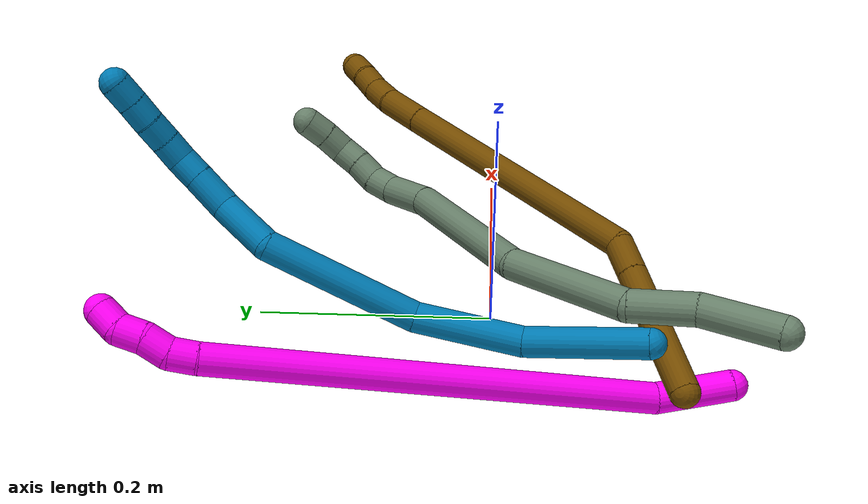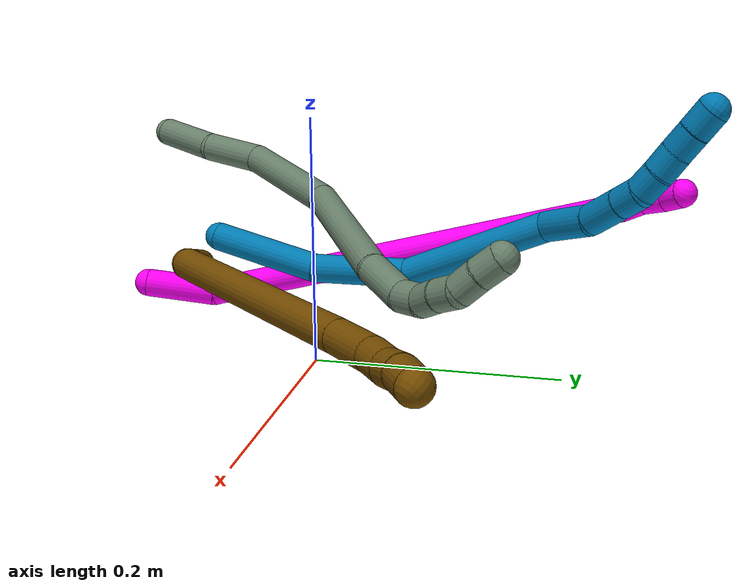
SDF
<sdf version="1.7">
 <world name="default">
  <model name="9">
   <static>0</static>
   <link name="9">
    <collision name="collision-cylinder-e_1_1_4">
     <pose>0.005019 0.023225 0.043692 -0.48857 0.101093 -0.025219</pose>
     <geometry><cylinder><radius>0.0125</radius><length>0.09947</length></cylinder></geometry>
     <surface>
      <friction><ode><mu>1.16</mu><mu2>1.16</mu2><slip1>0</slip1><slip2>0</slip2></ode></friction>
      <contact><ode><kp>1e+06</kp><kd>1</kd><max_vel>0</max_vel><min_depth>0.001</min_depth></ode></contact>
     </surface>
    </collision>
    <visual name="visual-cylinder-e_1_1_4">
     <pose>0.005019 0.023225 0.043692 -0.48857 0.101093 -0.025219</pose>
     <geometry><cylinder><radius>0.0125</radius><length>0.09947</length></cylinder></geometry>
     <material><ambient>0 0.490196 0.709804 1</ambient></material>
    </visual>
    <collision name="collision-cylinder-e_2_4_5">
     <pose>0.019857 0.075127 0.119858 -0.723403 0.222853 -0.084616</pose>
     <geometry><cylinder><radius>0.0125</radius><length>0.088845</length></cylinder></geometry>
     <surface>
      <friction><ode><mu>1.16</mu><mu2>1.16</mu2><slip1>0</slip1><slip2>0</slip2></ode></friction>
      <contact><ode><kp>1e+06</kp><kd>1</kd><max_vel>0</max_vel><min_depth>0.001</min_depth></ode></contact>
     </surface>
    </collision>
    <visual name="visual-cylinder-e_2_4_5">
     <pose>0.019857 0.075127 0.119858 -0.723403 0.222853 -0.084616</pose>
     <geometry><cylinder><radius>0.0125</radius><length>0.088845</length></cylinder></geometry>
     <material><ambient>0 0.490196 0.709804 1</ambient></material>
    </visual>
    <collision name="collision-cylinder-e_3_5_6">
     <pose>0.055946 0.154835 0.183388 -1.02409 0.414329 -0.235173</pose>
     <geometry><cylinder><radius>0.0125</radius><length>0.13052</length></cylinder></geometry>
     <surface>
      <friction><ode><mu>1.16</mu><mu2>1.16</mu2><slip1>0</slip1><slip2>0</slip2></ode></friction>
      <contact><ode><kp>1e+06</kp><kd>1</kd><max_vel>0</max_vel><min_depth>0.001</min_depth></ode></contact>
     </surface>
    </collision>
    <visual name="visual-cylinder-e_3_5_6">
     <pose>0.055946 0.154835 0.183388 -1.02409 0.414329 -0.235173</pose>
     <geometry><cylinder><radius>0.0125</radius><length>0.13052</length></cylinder></geometry>
     <material><ambient>0 0.490196 0.709804 1</ambient></material>
    </visual>
    <collision name="collision-cylinder-e_4_6_7">
     <pose>0.080499 0.228278 0.224061 -1.16543 -0.070399 0.046408</pose>
     <geometry><cylinder><radius>0.0125</radius><length>0.048898</length></cylinder></geometry>
     <surface>
      <friction><ode><mu>1.16</mu><mu2>1.16</mu2><slip1>0</slip1><slip2>0</slip2></ode></friction>
      <contact><ode><kp>1e+06</kp><kd>1</kd><max_vel>0</max_vel><min_depth>0.001</min_depth></ode></contact>
     </surface>
    </collision>
    <visual name="visual-cylinder-e_4_6_7">
     <pose>0.080499 0.228278 0.224061 -1.16543 -0.070399 0.046408</pose>
     <geometry><cylinder><radius>0.0125</radius><length>0.048898</length></cylinder></geometry>
     <material><ambient>0 0.490196 0.709804 1</ambient></material>
    </visual>
    <collision name="collision-cylinder-e_5_7_8">
     <pose>0.081609 0.266055 0.237216 -1.34452 0.1776 -0.141495</pose>
     <geometry><cylinder><radius>0.0125</radius><length>0.032038</length></cylinder></geometry>
     <surface>
      <friction><ode><mu>1.16</mu><mu2>1.16</mu2><slip1>0</slip1><slip2>0</slip2></ode></friction>
      <contact><ode><kp>1e+06</kp><kd>1</kd><max_vel>0</max_vel><min_depth>0.001</min_depth></ode></contact>
     </surface>
    </collision>
    <visual name="visual-cylinder-e_5_7_8">
     <pose>0.081609 0.266055 0.237216 -1.34452 0.1776 -0.141495</pose>
     <geometry><cylinder><radius>0.0125</radius><length>0.032038</length></cylinder></geometry>
     <material><ambient>0 0.490196 0.709804 1</ambient></material>
    </visual>
    <collision name="collision-cylinder-e_6_8_9">
     <pose>0.086489 0.291052 0.243045 -1.3372 0.204141 -0.161478</pose>
     <geometry><cylinder><radius>0.0125</radius><length>0.020223</length></cylinder></geometry>
     <surface>
      <friction><ode><mu>1.16</mu><mu2>1.16</mu2><slip1>0</slip1><slip2>0</slip2></ode></friction>
      <contact><ode><kp>1e+06</kp><kd>1</kd><max_vel>0</max_vel><min_depth>0.001</min_depth></ode></contact>
     </surface>
    </collision>
    <visual name="visual-cylinder-e_6_8_9">
     <pose>0.086489 0.291052 0.243045 -1.3372 0.204141 -0.161478</pose>
     <geometry><cylinder><radius>0.0125</radius><length>0.020223</length></cylinder></geometry>
     <material><ambient>0 0.490196 0.709804 1</ambient></material>
    </visual>
    <collision name="collision-cylinder-e_7_9_10">
     <pose>0.093178 0.309546 0.245481 -1.55457 0.482251 -0.474781</pose>
     <geometry><cylinder><radius>0.0125</radius><length>0.020006</length></cylinder></geometry>
     <surface>
      <friction><ode><mu>1.16</mu><mu2>1.16</mu2><slip1>0</slip1><slip2>0</slip2></ode></friction>
      <contact><ode><kp>1e+06</kp><kd>1</kd><max_vel>0</max_vel><min_depth>0.001</min_depth></ode></contact>
     </surface>
    </collision>
    <visual name="visual-cylinder-e_7_9_10">
     <pose>0.093178 0.309546 0.245481 -1.55457 0.482251 -0.474781</pose>
     <geometry><cylinder><radius>0.0125</radius><length>0.020006</length></cylinder></geometry>
     <material><ambient>0 0.490196 0.709804 1</ambient></material>
    </visual>
    <collision name="collision-cylinder-e_8_10_11">
     <pose>0.103451 0.326665 0.24535 -1.60413 0.59842 -0.617459</pose>
     <geometry><cylinder><radius>0.0125</radius><length>0.02</length></cylinder></geometry>
     <surface>
      <friction><ode><mu>1.16</mu><mu2>1.16</mu2><slip1>0</slip1><slip2>0</slip2></ode></friction>
      <contact><ode><kp>1e+06</kp><kd>1</kd><max_vel>0</max_vel><min_depth>0.001</min_depth></ode></contact>
     </surface>
    </collision>
    <visual name="visual-cylinder-e_8_10_11">
     <pose>0.103451 0.326665 0.24535 -1.60413 0.59842 -0.617459</pose>
     <geometry><cylinder><radius>0.0125</radius><length>0.02</length></cylinder></geometry>
     <material><ambient>0 0.490196 0.709804 1</ambient></material>
    </visual>
    <collision name="collision-cylinder-e_9_11_12">
     <pose>0.114019 0.343618 0.244887 -1.59234 0.516107 -0.526842</pose>
     <geometry><cylinder><radius>0.0125</radius><length>0.020001</length></cylinder></geometry>
     <surface>
      <friction><ode><mu>1.16</mu><mu2>1.16</mu2><slip1>0</slip1><slip2>0</slip2></ode></friction>
      <contact><ode><kp>1e+06</kp><kd>1</kd><max_vel>0</max_vel><min_depth>0.001</min_depth></ode></contact>
     </surface>
    </collision>
    <visual name="visual-cylinder-e_9_11_12">
     <pose>0.114019 0.343618 0.244887 -1.59234 0.516107 -0.526842</pose>
     <geometry><cylinder><radius>0.0125</radius><length>0.020001</length></cylinder></geometry>
     <material><ambient>0 0.490196 0.709804 1</ambient></material>
    </visual>
    <collision name="collision-cylinder-e_10_12_2">
     <pose>0.124311 0.360757 0.244537 -1.59003 0.565246 -0.575634</pose>
     <geometry><cylinder><radius>0.0125</radius><length>0.02</length></cylinder></geometry>
     <surface>
      <friction><ode><mu>1.16</mu><mu2>1.16</mu2><slip1>0</slip1><slip2>0</slip2></ode></friction>
      <contact><ode><kp>1e+06</kp><kd>1</kd><max_vel>0</max_vel><min_depth>0.001</min_depth></ode></contact>
     </surface>
    </collision>
    <visual name="visual-cylinder-e_10_12_2">
     <pose>0.124311 0.360757 0.244537 -1.59003 0.565246 -0.575634</pose>
     <geometry><cylinder><radius>0.0125</radius><length>0.02</length></cylinder></geometry>
     <material><ambient>0 0.490196 0.709804 1</ambient></material>
    </visual>
    <collision name="collision-sphere-2">
     <pose>0.129667 0.3692 0.244375 0 -0 0</pose>
     <geometry><sphere><radius>0.0125</radius></sphere></geometry>
     <surface>
      <friction><ode><mu>1.16</mu><mu2>1.16</mu2><slip1>0</slip1><slip2>0</slip2></ode></friction>
      <contact><ode><kp>1e+06</kp><kd>1</kd><max_vel>0</max_vel><min_depth>0.001</min_depth></ode></contact>
     </surface>
    </collision>
    <visual name="visual-sphere-2">
     <pose>0.129667 0.3692 0.244375 0 -0 0</pose>
     <geometry><sphere><radius>0.0125</radius></sphere></geometry>
     <material><ambient>0 0.490196 0.709804 1</ambient></material>
    </visual>
    <collision name="collision-sphere-12">
     <pose>0.118954 0.352314 0.2447 0 -0 0</pose>
     <geometry><sphere><radius>0.0125</radius></sphere></geometry>
     <surface>
      <friction><ode><mu>1.16</mu><mu2>1.16</mu2><slip1>0</slip1><slip2>0</slip2></ode></friction>
      <contact><ode><kp>1e+06</kp><kd>1</kd><max_vel>0</max_vel><min_depth>0.001</min_depth></ode></contact>
     </surface>
    </collision>
    <visual name="visual-sphere-12">
     <pose>0.118954 0.352314 0.2447 0 -0 0</pose>
     <geometry><sphere><radius>0.0125</radius></sphere></geometry>
     <material><ambient>0 0.490196 0.709804 1</ambient></material>
    </visual>
    <collision name="collision-sphere-11">
     <pose>0.109084 0.334923 0.245074 0 -0 0</pose>
     <geometry><sphere><radius>0.0125</radius></sphere></geometry>
     <surface>
      <friction><ode><mu>1.16</mu><mu2>1.16</mu2><slip1>0</slip1><slip2>0</slip2></ode></friction>
      <contact><ode><kp>1e+06</kp><kd>1</kd><max_vel>0</max_vel><min_depth>0.001</min_depth></ode></contact>
     </surface>
    </collision>
    <visual name="visual-sphere-11">
     <pose>0.109084 0.334923 0.245074 0 -0 0</pose>
     <geometry><sphere><radius>0.0125</radius></sphere></geometry>
     <material><ambient>0 0.490196 0.709804 1</ambient></material>
    </visual>
    <collision name="collision-sphere-10">
     <pose>0.097817 0.318407 0.245625 0 -0 0</pose>
     <geometry><sphere><radius>0.0125</radius></sphere></geometry>
     <surface>
      <friction><ode><mu>1.16</mu><mu2>1.16</mu2><slip1>0</slip1><slip2>0</slip2></ode></friction>
      <contact><ode><kp>1e+06</kp><kd>1</kd><max_vel>0</max_vel><min_depth>0.001</min_depth></ode></contact>
     </surface>
    </collision>
    <visual name="visual-sphere-10">
     <pose>0.097817 0.318407 0.245625 0 -0 0</pose>
     <geometry><sphere><radius>0.0125</radius></sphere></geometry>
     <material><ambient>0 0.490196 0.709804 1</ambient></material>
    </visual>
    <collision name="collision-sphere-9">
     <pose>0.088539 0.300685 0.245337 0 -0 0</pose>
     <geometry><sphere><radius>0.0125</radius></sphere></geometry>
     <surface>
      <friction><ode><mu>1.16</mu><mu2>1.16</mu2><slip1>0</slip1><slip2>0</slip2></ode></friction>
      <contact><ode><kp>1e+06</kp><kd>1</kd><max_vel>0</max_vel><min_depth>0.001</min_depth></ode></contact>
     </surface>
    </collision>
    <visual name="visual-sphere-9">
     <pose>0.088539 0.300685 0.245337 0 -0 0</pose>
     <geometry><sphere><radius>0.0125</radius></sphere></geometry>
     <material><ambient>0 0.490196 0.709804 1</ambient></material>
    </visual>
    <collision name="collision-sphere-4">
     <pose>0.010039 0.046449 0.087384 0 -0 0</pose>
     <geometry><sphere><radius>0.0125</radius></sphere></geometry>
     <surface>
      <friction><ode><mu>1.16</mu><mu2>1.16</mu2><slip1>0</slip1><slip2>0</slip2></ode></friction>
      <contact><ode><kp>1e+06</kp><kd>1</kd><max_vel>0</max_vel><min_depth>0.001</min_depth></ode></contact>
     </surface>
    </collision>
    <visual name="visual-sphere-4">
     <pose>0.010039 0.046449 0.087384 0 -0 0</pose>
     <geometry><sphere><radius>0.0125</radius></sphere></geometry>
     <material><ambient>0 0.490196 0.709804 1</ambient></material>
    </visual>
    <collision name="collision-sphere-1">
     <geometry><sphere><radius>0.0125</radius></sphere></geometry>
     <surface>
      <friction><ode><mu>1.16</mu><mu2>1.16</mu2><slip1>0</slip1><slip2>0</slip2></ode></friction>
      <contact><ode><kp>1e+06</kp><kd>1</kd><max_vel>0</max_vel><min_depth>0.001</min_depth></ode></contact>
     </surface>
    </collision>
    <visual name="visual-sphere-1">
     <geometry><sphere><radius>0.0125</radius></sphere></geometry>
     <material><ambient>0 0.490196 0.709804 1</ambient></material>
    </visual>
    <collision name="collision-sphere-8">
     <pose>0.084439 0.28142 0.240754 0 -0 0</pose>
     <geometry><sphere><radius>0.0125</radius></sphere></geometry>
     <surface>
      <friction><ode><mu>1.16</mu><mu2>1.16</mu2><slip1>0</slip1><slip2>0</slip2></ode></friction>
      <contact><ode><kp>1e+06</kp><kd>1</kd><max_vel>0</max_vel><min_depth>0.001</min_depth></ode></contact>
     </surface>
    </collision>
    <visual name="visual-sphere-8">
     <pose>0.084439 0.28142 0.240754 0 -0 0</pose>
     <geometry><sphere><radius>0.0125</radius></sphere></geometry>
     <material><ambient>0 0.490196 0.709804 1</ambient></material>
    </visual>
    <collision name="collision-sphere-5">
     <pose>0.029674 0.103805 0.152331 0 -0 0</pose>
     <geometry><sphere><radius>0.0125</radius></sphere></geometry>
     <surface>
      <friction><ode><mu>1.16</mu><mu2>1.16</mu2><slip1>0</slip1><slip2>0</slip2></ode></friction>
      <contact><ode><kp>1e+06</kp><kd>1</kd><max_vel>0</max_vel><min_depth>0.001</min_depth></ode></contact>
     </surface>
    </collision>
    <visual name="visual-sphere-5">
     <pose>0.029674 0.103805 0.152331 0 -0 0</pose>
     <geometry><sphere><radius>0.0125</radius></sphere></geometry>
     <material><ambient>0 0.490196 0.709804 1</ambient></material>
    </visual>
    <collision name="collision-sphere-6">
     <pose>0.082219 0.205866 0.214444 0 -0 0</pose>
     <geometry><sphere><radius>0.0125</radius></sphere></geometry>
     <surface>
      <friction><ode><mu>1.16</mu><mu2>1.16</mu2><slip1>0</slip1><slip2>0</slip2></ode></friction>
      <contact><ode><kp>1e+06</kp><kd>1</kd><max_vel>0</max_vel><min_depth>0.001</min_depth></ode></contact>
     </surface>
    </collision>
    <visual name="visual-sphere-6">
     <pose>0.082219 0.205866 0.214444 0 -0 0</pose>
     <geometry><sphere><radius>0.0125</radius></sphere></geometry>
     <material><ambient>0 0.490196 0.709804 1</ambient></material>
    </visual>
    <collision name="collision-sphere-7">
     <pose>0.078779 0.25069 0.233679 0 -0 0</pose>
     <geometry><sphere><radius>0.0125</radius></sphere></geometry>
     <surface>
      <friction><ode><mu>1.16</mu><mu2>1.16</mu2><slip1>0</slip1><slip2>0</slip2></ode></friction>
      <contact><ode><kp>1e+06</kp><kd>1</kd><max_vel>0</max_vel><min_depth>0.001</min_depth></ode></contact>
     </surface>
    </collision>
    <visual name="visual-sphere-7">
     <pose>0.078779 0.25069 0.233679 0 -0 0</pose>
     <geometry><sphere><radius>0.0125</radius></sphere></geometry>
     <material><ambient>0 0.490196 0.709804 1</ambient></material>
    </visual>
    <inertial>
     <pose>0.053131 0.16316 0.164017 0 -0 0</pose>
     <mass>0.5</mass>
     <inertia>
      <ixx>0.000296</ixx>
      <ixy>0</ixy>
      <ixz>0</ixz>
      <iyy>0.00022</iyy>
      <iyz>0</iyz>
      <izz>-0.000333</izz>
     </inertia>
    </inertial>
   </link>
   <pose>-0.104789 -0.120843 0.069371 2.33408 -0.521595 2.72206</pose>
  </model>
  <model name="10">
   <static>0</static>
   <link name="10">
    <collision name="collision-cylinder-e_1_1_4">
     <pose>0.001172 0.030182 0.005831 -1.37995 0.03811 -0.031453</pose>
     <geometry><cylinder><radius>0.0125</radius><length>0.061524</length></cylinder></geometry>
     <surface>
      <friction><ode><mu>1.16</mu><mu2>1.16</mu2><slip1>0</slip1><slip2>0</slip2></ode></friction>
      <contact><ode><kp>1e+06</kp><kd>1</kd><max_vel>0</max_vel><min_depth>0.001</min_depth></ode></contact>
     </surface>
    </collision>
    <visual name="visual-cylinder-e_1_1_4">
     <pose>0.001172 0.030182 0.005831 -1.37995 0.03811 -0.031453</pose>
     <geometry><cylinder><radius>0.0125</radius><length>0.061524</length></cylinder></geometry>
     <material><ambient>1 0 0.964706 1</ambient></material>
    </visual>
    <collision name="collision-cylinder-e_2_4_5">
     <pose>-0.020863 0.215945 0.095934 -1.07438 -0.130412 0.077747</pose>
     <geometry><cylinder><radius>0.0125</radius><length>0.356908</length></cylinder></geometry>
     <surface>
      <friction><ode><mu>1.16</mu><mu2>1.16</mu2><slip1>0</slip1><slip2>0</slip2></ode></friction>
      <contact><ode><kp>1e+06</kp><kd>1</kd><max_vel>0</max_vel><min_depth>0.001</min_depth></ode></contact>
     </surface>
    </collision>
    <visual name="visual-cylinder-e_2_4_5">
     <pose>-0.020863 0.215945 0.095934 -1.07438 -0.130412 0.077747</pose>
     <geometry><cylinder><radius>0.0125</radius><length>0.356908</length></cylinder></geometry>
     <material><ambient>1 0 0.964706 1</ambient></material>
    </visual>
    <collision name="collision-cylinder-e_3_5_6">
     <pose>-0.044157 0.380299 0.185682 -1.01279 -0.008517 0.004724</pose>
     <geometry><cylinder><radius>0.0125</radius><length>0.020685</length></cylinder></geometry>
     <surface>
      <friction><ode><mu>1.16</mu><mu2>1.16</mu2><slip1>0</slip1><slip2>0</slip2></ode></friction>
      <contact><ode><kp>1e+06</kp><kd>1</kd><max_vel>0</max_vel><min_depth>0.001</min_depth></ode></contact>
     </surface>
    </collision>
    <visual name="visual-cylinder-e_3_5_6">
     <pose>-0.044157 0.380299 0.185682 -1.01279 -0.008517 0.004724</pose>
     <geometry><cylinder><radius>0.0125</radius><length>0.020685</length></cylinder></geometry>
     <material><ambient>1 0 0.964706 1</ambient></material>
    </visual>
    <collision name="collision-cylinder-e_4_6_7">
     <pose>-0.042984 0.39526 0.199286 -0.650668 0.122876 -0.041495</pose>
     <geometry><cylinder><radius>0.0125</radius><length>0.020585</length></cylinder></geometry>
     <surface>
      <friction><ode><mu>1.16</mu><mu2>1.16</mu2><slip1>0</slip1><slip2>0</slip2></ode></friction>
      <contact><ode><kp>1e+06</kp><kd>1</kd><max_vel>0</max_vel><min_depth>0.001</min_depth></ode></contact>
     </surface>
    </collision>
    <visual name="visual-cylinder-e_4_6_7">
     <pose>-0.042984 0.39526 0.199286 -0.650668 0.122876 -0.041495</pose>
     <geometry><cylinder><radius>0.0125</radius><length>0.020585</length></cylinder></geometry>
     <material><ambient>1 0 0.964706 1</ambient></material>
    </visual>
    <collision name="collision-cylinder-e_5_7_8">
     <pose>-0.03994 0.409265 0.21359 -0.902123 0.176991 -0.0859</pose>
     <geometry><cylinder><radius>0.0125</radius><length>0.020242</length></cylinder></geometry>
     <surface>
      <friction><ode><mu>1.16</mu><mu2>1.16</mu2><slip1>0</slip1><slip2>0</slip2></ode></friction>
      <contact><ode><kp>1e+06</kp><kd>1</kd><max_vel>0</max_vel><min_depth>0.001</min_depth></ode></contact>
     </surface>
    </collision>
    <visual name="visual-cylinder-e_5_7_8">
     <pose>-0.03994 0.409265 0.21359 -0.902123 0.176991 -0.0859</pose>
     <geometry><cylinder><radius>0.0125</radius><length>0.020242</length></cylinder></geometry>
     <material><ambient>1 0 0.964706 1</ambient></material>
    </visual>
    <collision name="collision-cylinder-e_6_8_2">
     <pose>-0.033714 0.421336 0.227685 -0.492921 0.459191 -0.11746</pose>
     <geometry><cylinder><radius>0.0125</radius><length>0.020056</length></cylinder></geometry>
     <surface>
      <friction><ode><mu>1.16</mu><mu2>1.16</mu2><slip1>0</slip1><slip2>0</slip2></ode></friction>
      <contact><ode><kp>1e+06</kp><kd>1</kd><max_vel>0</max_vel><min_depth>0.001</min_depth></ode></contact>
     </surface>
    </collision>
    <visual name="visual-cylinder-e_6_8_2">
     <pose>-0.033714 0.421336 0.227685 -0.492921 0.459191 -0.11746</pose>
     <geometry><cylinder><radius>0.0125</radius><length>0.020056</length></cylinder></geometry>
     <material><ambient>1 0 0.964706 1</ambient></material>
    </visual>
    <collision name="collision-sphere-2">
     <pose>-0.029269 0.425589 0.235604 0 -0 0</pose>
     <geometry><sphere><radius>0.0125</radius></sphere></geometry>
     <surface>
      <friction><ode><mu>1.16</mu><mu2>1.16</mu2><slip1>0</slip1><slip2>0</slip2></ode></friction>
      <contact><ode><kp>1e+06</kp><kd>1</kd><max_vel>0</max_vel><min_depth>0.001</min_depth></ode></contact>
     </surface>
    </collision>
    <visual name="visual-sphere-2">
     <pose>-0.029269 0.425589 0.235604 0 -0 0</pose>
     <geometry><sphere><radius>0.0125</radius></sphere></geometry>
     <material><ambient>1 0 0.964706 1</ambient></material>
    </visual>
    <collision name="collision-sphere-4">
     <pose>0.002344 0.060363 0.011662 0 -0 0</pose>
     <geometry><sphere><radius>0.0125</radius></sphere></geometry>
     <surface>
      <friction><ode><mu>1.16</mu><mu2>1.16</mu2><slip1>0</slip1><slip2>0</slip2></ode></friction>
      <contact><ode><kp>1e+06</kp><kd>1</kd><max_vel>0</max_vel><min_depth>0.001</min_depth></ode></contact>
     </surface>
    </collision>
    <visual name="visual-sphere-4">
     <pose>0.002344 0.060363 0.011662 0 -0 0</pose>
     <geometry><sphere><radius>0.0125</radius></sphere></geometry>
     <material><ambient>1 0 0.964706 1</ambient></material>
    </visual>
    <collision name="collision-sphere-1">
     <geometry><sphere><radius>0.0125</radius></sphere></geometry>
     <surface>
      <friction><ode><mu>1.16</mu><mu2>1.16</mu2><slip1>0</slip1><slip2>0</slip2></ode></friction>
      <contact><ode><kp>1e+06</kp><kd>1</kd><max_vel>0</max_vel><min_depth>0.001</min_depth></ode></contact>
     </surface>
    </collision>
    <visual name="visual-sphere-1">
     <geometry><sphere><radius>0.0125</radius></sphere></geometry>
     <material><ambient>1 0 0.964706 1</ambient></material>
    </visual>
    <collision name="collision-sphere-8">
     <pose>-0.038158 0.417082 0.219767 0 -0 0</pose>
     <geometry><sphere><radius>0.0125</radius></sphere></geometry>
     <surface>
      <friction><ode><mu>1.16</mu><mu2>1.16</mu2><slip1>0</slip1><slip2>0</slip2></ode></friction>
      <contact><ode><kp>1e+06</kp><kd>1</kd><max_vel>0</max_vel><min_depth>0.001</min_depth></ode></contact>
     </surface>
    </collision>
    <visual name="visual-sphere-8">
     <pose>-0.038158 0.417082 0.219767 0 -0 0</pose>
     <geometry><sphere><radius>0.0125</radius></sphere></geometry>
     <material><ambient>1 0 0.964706 1</ambient></material>
    </visual>
    <collision name="collision-sphere-5">
     <pose>-0.044069 0.371526 0.180206 0 -0 0</pose>
     <geometry><sphere><radius>0.0125</radius></sphere></geometry>
     <surface>
      <friction><ode><mu>1.16</mu><mu2>1.16</mu2><slip1>0</slip1><slip2>0</slip2></ode></friction>
      <contact><ode><kp>1e+06</kp><kd>1</kd><max_vel>0</max_vel><min_depth>0.001</min_depth></ode></contact>
     </surface>
    </collision>
    <visual name="visual-sphere-5">
     <pose>-0.044069 0.371526 0.180206 0 -0 0</pose>
     <geometry><sphere><radius>0.0125</radius></sphere></geometry>
     <material><ambient>1 0 0.964706 1</ambient></material>
    </visual>
    <collision name="collision-sphere-6">
     <pose>-0.044245 0.389073 0.191158 0 -0 0</pose>
     <geometry><sphere><radius>0.0125</radius></sphere></geometry>
     <surface>
      <friction><ode><mu>1.16</mu><mu2>1.16</mu2><slip1>0</slip1><slip2>0</slip2></ode></friction>
      <contact><ode><kp>1e+06</kp><kd>1</kd><max_vel>0</max_vel><min_depth>0.001</min_depth></ode></contact>
     </surface>
    </collision>
    <visual name="visual-sphere-6">
     <pose>-0.044245 0.389073 0.191158 0 -0 0</pose>
     <geometry><sphere><radius>0.0125</radius></sphere></geometry>
     <material><ambient>1 0 0.964706 1</ambient></material>
    </visual>
    <collision name="collision-sphere-7">
     <pose>-0.041722 0.401448 0.207414 0 -0 0</pose>
     <geometry><sphere><radius>0.0125</radius></sphere></geometry>
     <surface>
      <friction><ode><mu>1.16</mu><mu2>1.16</mu2><slip1>0</slip1><slip2>0</slip2></ode></friction>
      <contact><ode><kp>1e+06</kp><kd>1</kd><max_vel>0</max_vel><min_depth>0.001</min_depth></ode></contact>
     </surface>
    </collision>
    <visual name="visual-sphere-7">
     <pose>-0.041722 0.401448 0.207414 0 -0 0</pose>
     <geometry><sphere><radius>0.0125</radius></sphere></geometry>
     <material><ambient>1 0 0.964706 1</ambient></material>
    </visual>
    <inertial>
     <pose>-0.021314 0.223333 0.102863 0 -0 0</pose>
     <mass>0.5</mass>
     <inertia>
      <ixx>0.004076</ixx>
      <ixy>0</ixy>
      <ixz>0</ixz>
      <iyy>0.002173</iyy>
      <iyz>0</iyz>
      <izz>-0.00283</izz>
     </inertia>
    </inertial>
   </link>
   <pose>-0.098286 -0.189608 0.022861 -0.308892 0.474707 0.134834</pose>
  </model>
  <model name="12">
   <static>0</static>
   <link name="12">
    <collision name="collision-cylinder-e_1_1_4">
     <pose>0.045022 0.029907 -0.018444 -2.12341 0.908093 -1.43697</pose>
     <geometry><cylinder><radius>0.0125</radius><length>0.114222</length></cylinder></geometry>
     <surface>
      <friction><ode><mu>1.16</mu><mu2>1.16</mu2><slip1>0</slip1><slip2>0</slip2></ode></friction>
      <contact><ode><kp>1e+06</kp><kd>1</kd><max_vel>0</max_vel><min_depth>0.001</min_depth></ode></contact>
     </surface>
    </collision>
    <visual name="visual-cylinder-e_1_1_4">
     <pose>0.045022 0.029907 -0.018444 -2.12341 0.908093 -1.43697</pose>
     <geometry><cylinder><radius>0.0125</radius><length>0.114222</length></cylinder></geometry>
     <material><ambient>0.466667 0.301961 0 1</ambient></material>
    </visual>
    <collision name="collision-cylinder-e_2_4_5">
     <pose>0.102524 0.068256 -0.041838 -2.10112 0.905824 -1.4084</pose>
     <geometry><cylinder><radius>0.0125</radius><length>0.031717</length></cylinder></geometry>
     <surface>
      <friction><ode><mu>1.16</mu><mu2>1.16</mu2><slip1>0</slip1><slip2>0</slip2></ode></friction>
      <contact><ode><kp>1e+06</kp><kd>1</kd><max_vel>0</max_vel><min_depth>0.001</min_depth></ode></contact>
     </surface>
    </collision>
    <visual name="visual-cylinder-e_2_4_5">
     <pose>0.102524 0.068256 -0.041838 -2.10112 0.905824 -1.4084</pose>
     <geometry><cylinder><radius>0.0125</radius><length>0.031717</length></cylinder></geometry>
     <material><ambient>0.466667 0.301961 0 1</ambient></material>
    </visual>
    <collision name="collision-cylinder-e_3_5_6">
     <pose>0.170924 0.183332 -0.060672 -1.70027 0.479531 -0.542979</pose>
     <geometry><cylinder><radius>0.0125</radius><length>0.242411</length></cylinder></geometry>
     <surface>
      <friction><ode><mu>1.16</mu><mu2>1.16</mu2><slip1>0</slip1><slip2>0</slip2></ode></friction>
      <contact><ode><kp>1e+06</kp><kd>1</kd><max_vel>0</max_vel><min_depth>0.001</min_depth></ode></contact>
     </surface>
    </collision>
    <visual name="visual-cylinder-e_3_5_6">
     <pose>0.170924 0.183332 -0.060672 -1.70027 0.479531 -0.542979</pose>
     <geometry><cylinder><radius>0.0125</radius><length>0.242411</length></cylinder></geometry>
     <material><ambient>0.466667 0.301961 0 1</ambient></material>
    </visual>
    <collision name="collision-cylinder-e_4_6_7">
     <pose>0.236665 0.308493 -0.077556 -1.73133 0.482154 -0.56243</pose>
     <geometry><cylinder><radius>0.0125</radius><length>0.042363</length></cylinder></geometry>
     <surface>
      <friction><ode><mu>1.16</mu><mu2>1.16</mu2><slip1>0</slip1><slip2>0</slip2></ode></friction>
      <contact><ode><kp>1e+06</kp><kd>1</kd><max_vel>0</max_vel><min_depth>0.001</min_depth></ode></contact>
     </surface>
    </collision>
    <visual name="visual-cylinder-e_4_6_7">
     <pose>0.236665 0.308493 -0.077556 -1.73133 0.482154 -0.56243</pose>
     <geometry><cylinder><radius>0.0125</radius><length>0.042363</length></cylinder></geometry>
     <material><ambient>0.466667 0.301961 0 1</ambient></material>
    </visual>
    <collision name="collision-cylinder-e_5_7_8">
     <pose>0.253087 0.337264 -0.083775 -1.87525 0.551062 -0.735347</pose>
     <geometry><cylinder><radius>0.0125</radius><length>0.025211</length></cylinder></geometry>
     <surface>
      <friction><ode><mu>1.16</mu><mu2>1.16</mu2><slip1>0</slip1><slip2>0</slip2></ode></friction>
      <contact><ode><kp>1e+06</kp><kd>1</kd><max_vel>0</max_vel><min_depth>0.001</min_depth></ode></contact>
     </surface>
    </collision>
    <visual name="visual-cylinder-e_5_7_8">
     <pose>0.253087 0.337264 -0.083775 -1.87525 0.551062 -0.735347</pose>
     <geometry><cylinder><radius>0.0125</radius><length>0.025211</length></cylinder></geometry>
     <material><ambient>0.466667 0.301961 0 1</ambient></material>
    </visual>
    <collision name="collision-cylinder-e_6_8_9">
     <pose>0.266632 0.355383 -0.088914 -1.80994 0.708564 -0.880209</pose>
     <geometry><cylinder><radius>0.0125</radius><length>0.021345</length></cylinder></geometry>
     <surface>
      <friction><ode><mu>1.16</mu><mu2>1.16</mu2><slip1>0</slip1><slip2>0</slip2></ode></friction>
      <contact><ode><kp>1e+06</kp><kd>1</kd><max_vel>0</max_vel><min_depth>0.001</min_depth></ode></contact>
     </surface>
    </collision>
    <visual name="visual-cylinder-e_6_8_9">
     <pose>0.266632 0.355383 -0.088914 -1.80994 0.708564 -0.880209</pose>
     <geometry><cylinder><radius>0.0125</radius><length>0.021345</length></cylinder></geometry>
     <material><ambient>0.466667 0.301961 0 1</ambient></material>
    </visual>
    <collision name="collision-cylinder-e_7_9_2">
     <pose>0.279901 0.371948 -0.094525 -1.97236 0.590079 -0.860997</pose>
     <geometry><cylinder><radius>0.0125</radius><length>0.02273</length></cylinder></geometry>
     <surface>
      <friction><ode><mu>1.16</mu><mu2>1.16</mu2><slip1>0</slip1><slip2>0</slip2></ode></friction>
      <contact><ode><kp>1e+06</kp><kd>1</kd><max_vel>0</max_vel><min_depth>0.001</min_depth></ode></contact>
     </surface>
    </collision>
    <visual name="visual-cylinder-e_7_9_2">
     <pose>0.279901 0.371948 -0.094525 -1.97236 0.590079 -0.860997</pose>
     <geometry><cylinder><radius>0.0125</radius><length>0.02273</length></cylinder></geometry>
     <material><ambient>0.466667 0.301961 0 1</ambient></material>
    </visual>
    <collision name="collision-sphere-2">
     <pose>0.286225 0.38064 -0.098215 0 -0 0</pose>
     <geometry><sphere><radius>0.0125</radius></sphere></geometry>
     <surface>
      <friction><ode><mu>1.16</mu><mu2>1.16</mu2><slip1>0</slip1><slip2>0</slip2></ode></friction>
      <contact><ode><kp>1e+06</kp><kd>1</kd><max_vel>0</max_vel><min_depth>0.001</min_depth></ode></contact>
     </surface>
    </collision>
    <visual name="visual-sphere-2">
     <pose>0.286225 0.38064 -0.098215 0 -0 0</pose>
     <geometry><sphere><radius>0.0125</radius></sphere></geometry>
     <material><ambient>0.466667 0.301961 0 1</ambient></material>
    </visual>
    <collision name="collision-sphere-9">
     <pose>0.273578 0.363256 -0.090834 0 -0 0</pose>
     <geometry><sphere><radius>0.0125</radius></sphere></geometry>
     <surface>
      <friction><ode><mu>1.16</mu><mu2>1.16</mu2><slip1>0</slip1><slip2>0</slip2></ode></friction>
      <contact><ode><kp>1e+06</kp><kd>1</kd><max_vel>0</max_vel><min_depth>0.001</min_depth></ode></contact>
     </surface>
    </collision>
    <visual name="visual-sphere-9">
     <pose>0.273578 0.363256 -0.090834 0 -0 0</pose>
     <geometry><sphere><radius>0.0125</radius></sphere></geometry>
     <material><ambient>0.466667 0.301961 0 1</ambient></material>
    </visual>
    <collision name="collision-sphere-4">
     <pose>0.090045 0.059815 -0.036888 0 -0 0</pose>
     <geometry><sphere><radius>0.0125</radius></sphere></geometry>
     <surface>
      <friction><ode><mu>1.16</mu><mu2>1.16</mu2><slip1>0</slip1><slip2>0</slip2></ode></friction>
      <contact><ode><kp>1e+06</kp><kd>1</kd><max_vel>0</max_vel><min_depth>0.001</min_depth></ode></contact>
     </surface>
    </collision>
    <visual name="visual-sphere-4">
     <pose>0.090045 0.059815 -0.036888 0 -0 0</pose>
     <geometry><sphere><radius>0.0125</radius></sphere></geometry>
     <material><ambient>0.466667 0.301961 0 1</ambient></material>
    </visual>
    <collision name="collision-sphere-1">
     <geometry><sphere><radius>0.0125</radius></sphere></geometry>
     <surface>
      <friction><ode><mu>1.16</mu><mu2>1.16</mu2><slip1>0</slip1><slip2>0</slip2></ode></friction>
      <contact><ode><kp>1e+06</kp><kd>1</kd><max_vel>0</max_vel><min_depth>0.001</min_depth></ode></contact>
     </surface>
    </collision>
    <visual name="visual-sphere-1">
     <geometry><sphere><radius>0.0125</radius></sphere></geometry>
     <material><ambient>0.466667 0.301961 0 1</ambient></material>
    </visual>
    <collision name="collision-sphere-8">
     <pose>0.259687 0.34751 -0.086995 0 -0 0</pose>
     <geometry><sphere><radius>0.0125</radius></sphere></geometry>
     <surface>
      <friction><ode><mu>1.16</mu><mu2>1.16</mu2><slip1>0</slip1><slip2>0</slip2></ode></friction>
      <contact><ode><kp>1e+06</kp><kd>1</kd><max_vel>0</max_vel><min_depth>0.001</min_depth></ode></contact>
     </surface>
    </collision>
    <visual name="visual-sphere-8">
     <pose>0.259687 0.34751 -0.086995 0 -0 0</pose>
     <geometry><sphere><radius>0.0125</radius></sphere></geometry>
     <material><ambient>0.466667 0.301961 0 1</ambient></material>
    </visual>
    <collision name="collision-sphere-5">
     <pose>0.115004 0.076698 -0.046787 0 -0 0</pose>
     <geometry><sphere><radius>0.0125</radius></sphere></geometry>
     <surface>
      <friction><ode><mu>1.16</mu><mu2>1.16</mu2><slip1>0</slip1><slip2>0</slip2></ode></friction>
      <contact><ode><kp>1e+06</kp><kd>1</kd><max_vel>0</max_vel><min_depth>0.001</min_depth></ode></contact>
     </surface>
    </collision>
    <visual name="visual-sphere-5">
     <pose>0.115004 0.076698 -0.046787 0 -0 0</pose>
     <geometry><sphere><radius>0.0125</radius></sphere></geometry>
     <material><ambient>0.466667 0.301961 0 1</ambient></material>
    </visual>
    <collision name="collision-sphere-6">
     <pose>0.226844 0.289967 -0.074556 0 -0 0</pose>
     <geometry><sphere><radius>0.0125</radius></sphere></geometry>
     <surface>
      <friction><ode><mu>1.16</mu><mu2>1.16</mu2><slip1>0</slip1><slip2>0</slip2></ode></friction>
      <contact><ode><kp>1e+06</kp><kd>1</kd><max_vel>0</max_vel><min_depth>0.001</min_depth></ode></contact>
     </surface>
    </collision>
    <visual name="visual-sphere-6">
     <pose>0.226844 0.289967 -0.074556 0 -0 0</pose>
     <geometry><sphere><radius>0.0125</radius></sphere></geometry>
     <material><ambient>0.466667 0.301961 0 1</ambient></material>
    </visual>
    <collision name="collision-sphere-7">
     <pose>0.246487 0.327018 -0.080556 0 -0 0</pose>
     <geometry><sphere><radius>0.0125</radius></sphere></geometry>
     <surface>
      <friction><ode><mu>1.16</mu><mu2>1.16</mu2><slip1>0</slip1><slip2>0</slip2></ode></friction>
      <contact><ode><kp>1e+06</kp><kd>1</kd><max_vel>0</max_vel><min_depth>0.001</min_depth></ode></contact>
     </surface>
    </collision>
    <visual name="visual-sphere-7">
     <pose>0.246487 0.327018 -0.080556 0 -0 0</pose>
     <geometry><sphere><radius>0.0125</radius></sphere></geometry>
     <material><ambient>0.466667 0.301961 0 1</ambient></material>
    </visual>
    <inertial>
     <pose>0.156576 0.175269 -0.055171 0 -0 0</pose>
     <mass>0.5</mass>
     <inertia>
      <ixx>0.000315</ixx>
      <ixy>0</ixy>
      <ixz>0</ixz>
      <iyy>-0.000375</iyy>
      <iyz>0</iyz>
      <izz>-0.001805</izz>
     </inertia>
    </inertial>
   </link>
   <pose>-0.12309 -0.148053 0.036916 -0.457604 -0.888927 -0.030653</pose>
  </model>
  <model name="17">
   <static>0</static>
   <link name="17">
    <collision name="collision-cylinder-e_1_1_4">
     <pose>0.004304 0.030323 -0.003874 -1.69786 0.139887 -0.15882</pose>
     <geometry><cylinder><radius>0.0125</radius><length>0.061743</length></cylinder></geometry>
     <surface>
      <friction><ode><mu>1.16</mu><mu2>1.16</mu2><slip1>0</slip1><slip2>0</slip2></ode></friction>
      <contact><ode><kp>1e+06</kp><kd>1</kd><max_vel>0</max_vel><min_depth>0.001</min_depth></ode></contact>
     </surface>
    </collision>
    <visual name="visual-cylinder-e_1_1_4">
     <pose>0.004304 0.030323 -0.003874 -1.69786 0.139887 -0.15882</pose>
     <geometry><cylinder><radius>0.0125</radius><length>0.061743</length></cylinder></geometry>
     <material><ambient>0.415686 0.509804 0.423529 1</ambient></material>
    </visual>
    <collision name="collision-cylinder-e_2_4_5">
     <pose>0.008725 0.085582 -0.004319 -1.43414 0.004605 -0.004015</pose>
     <geometry><cylinder><radius>0.0125</radius><length>0.05034</length></cylinder></geometry>
     <surface>
      <friction><ode><mu>1.16</mu><mu2>1.16</mu2><slip1>0</slip1><slip2>0</slip2></ode></friction>
      <contact><ode><kp>1e+06</kp><kd>1</kd><max_vel>0</max_vel><min_depth>0.001</min_depth></ode></contact>
     </surface>
    </collision>
    <visual name="visual-cylinder-e_2_4_5">
     <pose>0.008725 0.085582 -0.004319 -1.43414 0.004605 -0.004015</pose>
     <geometry><cylinder><radius>0.0125</radius><length>0.05034</length></cylinder></geometry>
     <material><ambient>0.415686 0.509804 0.423529 1</ambient></material>
    </visual>
    <collision name="collision-cylinder-e_3_5_6">
     <pose>0.016135 0.160236 -0.017643 -1.89581 0.138143 -0.192039</pose>
     <geometry><cylinder><radius>0.0125</radius><length>0.105941</length></cylinder></geometry>
     <surface>
      <friction><ode><mu>1.16</mu><mu2>1.16</mu2><slip1>0</slip1><slip2>0</slip2></ode></friction>
      <contact><ode><kp>1e+06</kp><kd>1</kd><max_vel>0</max_vel><min_depth>0.001</min_depth></ode></contact>
     </surface>
    </collision>
    <visual name="visual-cylinder-e_3_5_6">
     <pose>0.016135 0.160236 -0.017643 -1.89581 0.138143 -0.192039</pose>
     <geometry><cylinder><radius>0.0125</radius><length>0.105941</length></cylinder></geometry>
     <material><ambient>0.415686 0.509804 0.423529 1</ambient></material>
    </visual>
    <collision name="collision-cylinder-e_4_6_7">
     <pose>0.037124 0.263962 -0.073636 -2.19913 0.202336 -0.393324</pose>
     <geometry><cylinder><radius>0.0125</radius><length>0.136294</length></cylinder></geometry>
     <surface>
      <friction><ode><mu>1.16</mu><mu2>1.16</mu2><slip1>0</slip1><slip2>0</slip2></ode></friction>
      <contact><ode><kp>1e+06</kp><kd>1</kd><max_vel>0</max_vel><min_depth>0.001</min_depth></ode></contact>
     </surface>
    </collision>
    <visual name="visual-cylinder-e_4_6_7">
     <pose>0.037124 0.263962 -0.073636 -2.19913 0.202336 -0.393324</pose>
     <geometry><cylinder><radius>0.0125</radius><length>0.136294</length></cylinder></geometry>
     <material><ambient>0.415686 0.509804 0.423529 1</ambient></material>
    </visual>
    <collision name="collision-cylinder-e_5_7_8">
     <pose>0.052925 0.337459 -0.122072 -2.01163 0.097446 -0.153542</pose>
     <geometry><cylinder><radius>0.0125</radius><length>0.043307</length></cylinder></geometry>
     <surface>
      <friction><ode><mu>1.16</mu><mu2>1.16</mu2><slip1>0</slip1><slip2>0</slip2></ode></friction>
      <contact><ode><kp>1e+06</kp><kd>1</kd><max_vel>0</max_vel><min_depth>0.001</min_depth></ode></contact>
     </surface>
    </collision>
    <visual name="visual-cylinder-e_5_7_8">
     <pose>0.052925 0.337459 -0.122072 -2.01163 0.097446 -0.153542</pose>
     <geometry><cylinder><radius>0.0125</radius><length>0.043307</length></cylinder></geometry>
     <material><ambient>0.415686 0.509804 0.423529 1</ambient></material>
    </visual>
    <collision name="collision-cylinder-e_6_8_9">
     <pose>0.058826 0.366943 -0.133202 -1.76205 0.356746 -0.430324</pose>
     <geometry><cylinder><radius>0.0125</radius><length>0.021725</length></cylinder></geometry>
     <surface>
      <friction><ode><mu>1.16</mu><mu2>1.16</mu2><slip1>0</slip1><slip2>0</slip2></ode></friction>
      <contact><ode><kp>1e+06</kp><kd>1</kd><max_vel>0</max_vel><min_depth>0.001</min_depth></ode></contact>
     </surface>
    </collision>
    <visual name="visual-cylinder-e_6_8_9">
     <pose>0.058826 0.366943 -0.133202 -1.76205 0.356746 -0.430324</pose>
     <geometry><cylinder><radius>0.0125</radius><length>0.021725</length></cylinder></geometry>
     <material><ambient>0.415686 0.509804 0.423529 1</ambient></material>
    </visual>
    <collision name="collision-cylinder-e_7_9_10">
     <pose>0.069366 0.384558 -0.135821 -1.66033 0.722578 -0.783866</pose>
     <geometry><cylinder><radius>0.0125</radius><length>0.020405</length></cylinder></geometry>
     <surface>
      <friction><ode><mu>1.16</mu><mu2>1.16</mu2><slip1>0</slip1><slip2>0</slip2></ode></friction>
      <contact><ode><kp>1e+06</kp><kd>1</kd><max_vel>0</max_vel><min_depth>0.001</min_depth></ode></contact>
     </surface>
    </collision>
    <visual name="visual-cylinder-e_7_9_10">
     <pose>0.069366 0.384558 -0.135821 -1.66033 0.722578 -0.783866</pose>
     <geometry><cylinder><radius>0.0125</radius><length>0.020405</length></cylinder></geometry>
     <material><ambient>0.415686 0.509804 0.423529 1</ambient></material>
    </visual>
    <collision name="collision-cylinder-e_8_10_11">
     <pose>0.081963 0.400367 -0.13662 -1.58478 0.620349 -0.628524</pose>
     <geometry><cylinder><radius>0.0125</radius><length>0.020125</length></cylinder></geometry>
     <surface>
      <friction><ode><mu>1.16</mu><mu2>1.16</mu2><slip1>0</slip1><slip2>0</slip2></ode></friction>
      <contact><ode><kp>1e+06</kp><kd>1</kd><max_vel>0</max_vel><min_depth>0.001</min_depth></ode></contact>
     </surface>
    </collision>
    <visual name="visual-cylinder-e_8_10_11">
     <pose>0.081963 0.400367 -0.13662 -1.58478 0.620349 -0.628524</pose>
     <geometry><cylinder><radius>0.0125</radius><length>0.020125</length></cylinder></geometry>
     <material><ambient>0.415686 0.509804 0.423529 1</ambient></material>
    </visual>
    <collision name="collision-cylinder-e_9_11_12">
     <pose>0.094825 0.414378 -0.132548 -0.947606 0.774116 -0.41209</pose>
     <geometry><cylinder><radius>0.0125</radius><length>0.020063</length></cylinder></geometry>
     <surface>
      <friction><ode><mu>1.16</mu><mu2>1.16</mu2><slip1>0</slip1><slip2>0</slip2></ode></friction>
      <contact><ode><kp>1e+06</kp><kd>1</kd><max_vel>0</max_vel><min_depth>0.001</min_depth></ode></contact>
     </surface>
    </collision>
    <visual name="visual-cylinder-e_9_11_12">
     <pose>0.094825 0.414378 -0.132548 -0.947606 0.774116 -0.41209</pose>
     <geometry><cylinder><radius>0.0125</radius><length>0.020063</length></cylinder></geometry>
     <material><ambient>0.415686 0.509804 0.423529 1</ambient></material>
    </visual>
    <collision name="collision-cylinder-e_10_12_2">
     <pose>0.108217 0.426343 -0.123653 -0.916529 0.689486 -0.350626</pose>
     <geometry><cylinder><radius>0.0125</radius><length>0.020057</length></cylinder></geometry>
     <surface>
      <friction><ode><mu>1.16</mu><mu2>1.16</mu2><slip1>0</slip1><slip2>0</slip2></ode></friction>
      <contact><ode><kp>1e+06</kp><kd>1</kd><max_vel>0</max_vel><min_depth>0.001</min_depth></ode></contact>
     </surface>
    </collision>
    <visual name="visual-cylinder-e_10_12_2">
     <pose>0.108217 0.426343 -0.123653 -0.916529 0.689486 -0.350626</pose>
     <geometry><cylinder><radius>0.0125</radius><length>0.020057</length></cylinder></geometry>
     <material><ambient>0.415686 0.509804 0.423529 1</ambient></material>
    </visual>
    <collision name="collision-sphere-2">
     <pose>0.114597 0.432483 -0.118944 0 -0 0</pose>
     <geometry><sphere><radius>0.0125</radius></sphere></geometry>
     <surface>
      <friction><ode><mu>1.16</mu><mu2>1.16</mu2><slip1>0</slip1><slip2>0</slip2></ode></friction>
      <contact><ode><kp>1e+06</kp><kd>1</kd><max_vel>0</max_vel><min_depth>0.001</min_depth></ode></contact>
     </surface>
    </collision>
    <visual name="visual-sphere-2">
     <pose>0.114597 0.432483 -0.118944 0 -0 0</pose>
     <geometry><sphere><radius>0.0125</radius></sphere></geometry>
     <material><ambient>0.415686 0.509804 0.423529 1</ambient></material>
    </visual>
    <collision name="collision-sphere-12">
     <pose>0.101838 0.420203 -0.128362 0 -0 0</pose>
     <geometry><sphere><radius>0.0125</radius></sphere></geometry>
     <surface>
      <friction><ode><mu>1.16</mu><mu2>1.16</mu2><slip1>0</slip1><slip2>0</slip2></ode></friction>
      <contact><ode><kp>1e+06</kp><kd>1</kd><max_vel>0</max_vel><min_depth>0.001</min_depth></ode></contact>
     </surface>
    </collision>
    <visual name="visual-sphere-12">
     <pose>0.101838 0.420203 -0.128362 0 -0 0</pose>
     <geometry><sphere><radius>0.0125</radius></sphere></geometry>
     <material><ambient>0.415686 0.509804 0.423529 1</ambient></material>
    </visual>
    <collision name="collision-sphere-11">
     <pose>0.087812 0.408554 -0.136734 0 -0 0</pose>
     <geometry><sphere><radius>0.0125</radius></sphere></geometry>
     <surface>
      <friction><ode><mu>1.16</mu><mu2>1.16</mu2><slip1>0</slip1><slip2>0</slip2></ode></friction>
      <contact><ode><kp>1e+06</kp><kd>1</kd><max_vel>0</max_vel><min_depth>0.001</min_depth></ode></contact>
     </surface>
    </collision>
    <visual name="visual-sphere-11">
     <pose>0.087812 0.408554 -0.136734 0 -0 0</pose>
     <geometry><sphere><radius>0.0125</radius></sphere></geometry>
     <material><ambient>0.415686 0.509804 0.423529 1</ambient></material>
    </visual>
    <collision name="collision-sphere-10">
     <pose>0.076113 0.39218 -0.136505 0 -0 0</pose>
     <geometry><sphere><radius>0.0125</radius></sphere></geometry>
     <surface>
      <friction><ode><mu>1.16</mu><mu2>1.16</mu2><slip1>0</slip1><slip2>0</slip2></ode></friction>
      <contact><ode><kp>1e+06</kp><kd>1</kd><max_vel>0</max_vel><min_depth>0.001</min_depth></ode></contact>
     </surface>
    </collision>
    <visual name="visual-sphere-10">
     <pose>0.076113 0.39218 -0.136505 0 -0 0</pose>
     <geometry><sphere><radius>0.0125</radius></sphere></geometry>
     <material><ambient>0.415686 0.509804 0.423529 1</ambient></material>
    </visual>
    <collision name="collision-sphere-9">
     <pose>0.062619 0.376936 -0.135137 0 -0 0</pose>
     <geometry><sphere><radius>0.0125</radius></sphere></geometry>
     <surface>
      <friction><ode><mu>1.16</mu><mu2>1.16</mu2><slip1>0</slip1><slip2>0</slip2></ode></friction>
      <contact><ode><kp>1e+06</kp><kd>1</kd><max_vel>0</max_vel><min_depth>0.001</min_depth></ode></contact>
     </surface>
    </collision>
    <visual name="visual-sphere-9">
     <pose>0.062619 0.376936 -0.135137 0 -0 0</pose>
     <geometry><sphere><radius>0.0125</radius></sphere></geometry>
     <material><ambient>0.415686 0.509804 0.423529 1</ambient></material>
    </visual>
    <collision name="collision-sphere-4">
     <pose>0.008609 0.060647 -0.007748 0 -0 0</pose>
     <geometry><sphere><radius>0.0125</radius></sphere></geometry>
     <surface>
      <friction><ode><mu>1.16</mu><mu2>1.16</mu2><slip1>0</slip1><slip2>0</slip2></ode></friction>
      <contact><ode><kp>1e+06</kp><kd>1</kd><max_vel>0</max_vel><min_depth>0.001</min_depth></ode></contact>
     </surface>
    </collision>
    <visual name="visual-sphere-4">
     <pose>0.008609 0.060647 -0.007748 0 -0 0</pose>
     <geometry><sphere><radius>0.0125</radius></sphere></geometry>
     <material><ambient>0.415686 0.509804 0.423529 1</ambient></material>
    </visual>
    <collision name="collision-sphere-1">
     <geometry><sphere><radius>0.0125</radius></sphere></geometry>
     <surface>
      <friction><ode><mu>1.16</mu><mu2>1.16</mu2><slip1>0</slip1><slip2>0</slip2></ode></friction>
      <contact><ode><kp>1e+06</kp><kd>1</kd><max_vel>0</max_vel><min_depth>0.001</min_depth></ode></contact>
     </surface>
    </collision>
    <visual name="visual-sphere-1">
     <geometry><sphere><radius>0.0125</radius></sphere></geometry>
     <material><ambient>0.415686 0.509804 0.423529 1</ambient></material>
    </visual>
    <collision name="collision-sphere-8">
     <pose>0.055032 0.35695 -0.131267 0 -0 0</pose>
     <geometry><sphere><radius>0.0125</radius></sphere></geometry>
     <surface>
      <friction><ode><mu>1.16</mu><mu2>1.16</mu2><slip1>0</slip1><slip2>0</slip2></ode></friction>
      <contact><ode><kp>1e+06</kp><kd>1</kd><max_vel>0</max_vel><min_depth>0.001</min_depth></ode></contact>
     </surface>
    </collision>
    <visual name="visual-sphere-8">
     <pose>0.055032 0.35695 -0.131267 0 -0 0</pose>
     <geometry><sphere><radius>0.0125</radius></sphere></geometry>
     <material><ambient>0.415686 0.509804 0.423529 1</ambient></material>
    </visual>
    <collision name="collision-sphere-5">
     <pose>0.008841 0.110517 -0.00089 0 -0 0</pose>
     <geometry><sphere><radius>0.0125</radius></sphere></geometry>
     <surface>
      <friction><ode><mu>1.16</mu><mu2>1.16</mu2><slip1>0</slip1><slip2>0</slip2></ode></friction>
      <contact><ode><kp>1e+06</kp><kd>1</kd><max_vel>0</max_vel><min_depth>0.001</min_depth></ode></contact>
     </surface>
    </collision>
    <visual name="visual-sphere-5">
     <pose>0.008841 0.110517 -0.00089 0 -0 0</pose>
     <geometry><sphere><radius>0.0125</radius></sphere></geometry>
     <material><ambient>0.415686 0.509804 0.423529 1</ambient></material>
    </visual>
    <collision name="collision-sphere-6">
     <pose>0.023429 0.209955 -0.034397 0 -0 0</pose>
     <geometry><sphere><radius>0.0125</radius></sphere></geometry>
     <surface>
      <friction><ode><mu>1.16</mu><mu2>1.16</mu2><slip1>0</slip1><slip2>0</slip2></ode></friction>
      <contact><ode><kp>1e+06</kp><kd>1</kd><max_vel>0</max_vel><min_depth>0.001</min_depth></ode></contact>
     </surface>
    </collision>
    <visual name="visual-sphere-6">
     <pose>0.023429 0.209955 -0.034397 0 -0 0</pose>
     <geometry><sphere><radius>0.0125</radius></sphere></geometry>
     <material><ambient>0.415686 0.509804 0.423529 1</ambient></material>
    </visual>
    <collision name="collision-sphere-7">
     <pose>0.050819 0.317969 -0.112876 0 -0 0</pose>
     <geometry><sphere><radius>0.0125</radius></sphere></geometry>
     <surface>
      <friction><ode><mu>1.16</mu><mu2>1.16</mu2><slip1>0</slip1><slip2>0</slip2></ode></friction>
      <contact><ode><kp>1e+06</kp><kd>1</kd><max_vel>0</max_vel><min_depth>0.001</min_depth></ode></contact>
     </surface>
    </collision>
    <visual name="visual-sphere-7">
     <pose>0.050819 0.317969 -0.112876 0 -0 0</pose>
     <geometry><sphere><radius>0.0125</radius></sphere></geometry>
     <material><ambient>0.415686 0.509804 0.423529 1</ambient></material>
    </visual>
    <inertial>
     <pose>0.036364 0.228976 -0.062405 0 -0 0</pose>
     <mass>0.5</mass>
     <inertia>
      <ixx>0.000244</ixx>
      <ixy>0</ixy>
      <ixz>0</ixz>
      <iyy>-0.000209</iyy>
      <iyz>0</iyz>
      <izz>-0.000391</izz>
     </inertia>
    </inertial>
   </link>
   <pose>-0.179744 -0.19653 0.148336 -0.49284 -1.15691 0.119837</pose>
  </model>
 </world>
</sdf>
